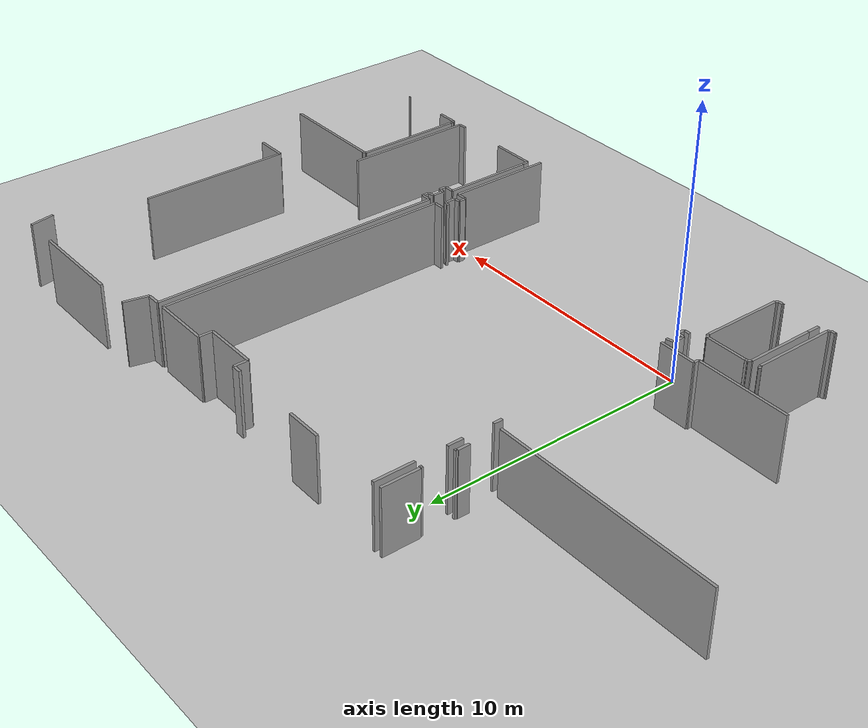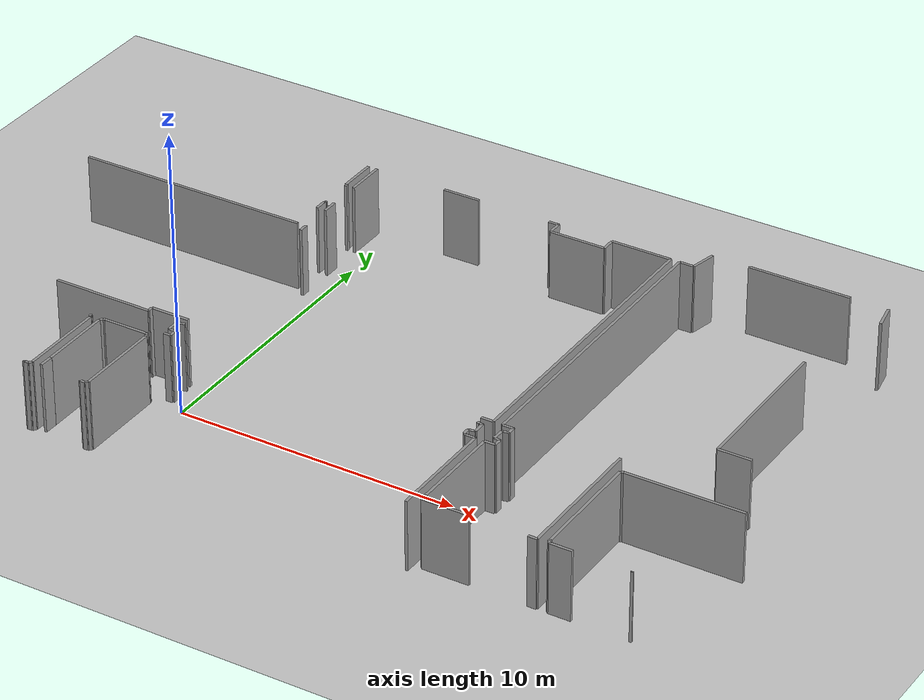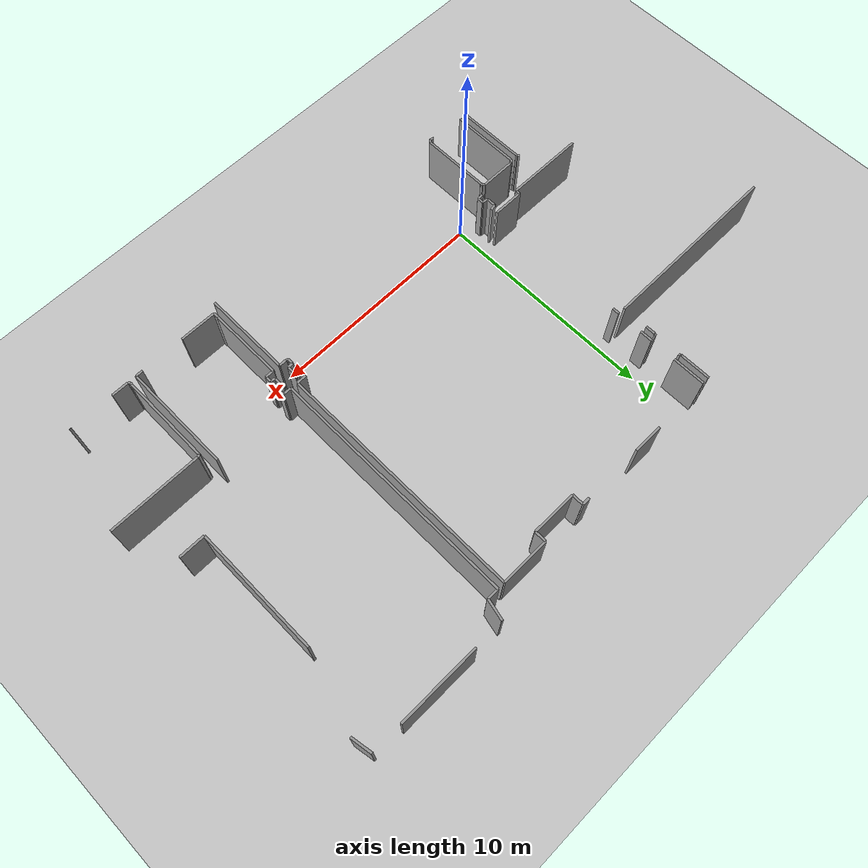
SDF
<sdf version="1.6">
 <world name="default">
  <model name="ground_plane">
   <static>1</static>
   <link name="link">
    <collision name="collision">
     <geometry><plane><normal>0 0 1</normal><size>100 100</size></plane></geometry>
     <surface><friction><ode><mu>100</mu><mu2>50</mu2></ode></friction></surface>
    </collision>
    <visual name="visual">
     <cast_shadows>0</cast_shadows>
     <geometry><plane><normal>0 0 1</normal><size>100 100</size></plane></geometry>
     <material>
      <script><uri>file://media/materials/scripts/gazebo.material</uri><name>Gazebo/Grey</name></script>
     </material>
    </visual>
   </link>
  </model>
  <model name="0510032261_A_40_1_103">
   <static>1</static>
   <link name="Wall_240">
    <collision name="Wall_240_Collision">
     <geometry><box><size>1.38526048285 0.1 2.5</size></box></geometry>
     <pose>0.692630241423 0 1.25 0 0 0</pose>
    </collision>
    <visual name="Wall_240_Visual">
     <pose>0.692630241423 0 1.25 0 0 0</pose>
     <geometry><box><size>1.38526048285 0.1 2.5</size></box></geometry>
     <material>
      <script><uri>file://media/materials/scripts/gazebo.material</uri><name>Gazebo/Grey</name></script>
      <ambient>1 1 1 1</ambient>
     </material>
    </visual>
    <pose>48.2067344346 -4.00635324015 0 0 0 -1.57079632679</pose>
   </link>
   <link name="Wall_241">
    <collision name="Wall_241_Collision">
     <geometry><box><size>0.0350698856417 0.1 2.5</size></box></geometry>
     <pose>0.0175349428208 0 1.25 0 0 0</pose>
    </collision>
    <visual name="Wall_241_Visual">
     <pose>0.0175349428208 0 1.25 0 0 0</pose>
     <geometry><box><size>0.0350698856417 0.1 2.5</size></box></geometry>
     <material>
      <script><uri>file://media/materials/scripts/gazebo.material</uri><name>Gazebo/Grey</name></script>
      <ambient>1 1 1 1</ambient>
     </material>
    </visual>
    <pose>48.2067344346 -5.391613723 0 0 0 0.0</pose>
   </link>
   <link name="Wall_242">
    <collision name="Wall_242_Collision">
     <geometry><box><size>0.0955527318933 0.1 2.5</size></box></geometry>
     <pose>0.0477763659466 0 1.25 0 0 0</pose>
    </collision>
    <visual name="Wall_242_Visual">
     <pose>0.0477763659466 0 1.25 0 0 0</pose>
     <geometry><box><size>0.0955527318933 0.1 2.5</size></box></geometry>
     <material>
      <script><uri>file://media/materials/scripts/gazebo.material</uri><name>Gazebo/Grey</name></script>
      <ambient>1 1 1 1</ambient>
     </material>
    </visual>
    <pose>48.2418043202 -5.391613723 0 0 0 -1.57079632679</pose>
   </link>
   <link name="Wall_243">
    <collision name="Wall_243_Collision">
     <geometry><box><size>0.0726810673443 0.1 2.5</size></box></geometry>
     <pose>0.0363405336722 0 1.25 0 0 0</pose>
    </collision>
    <visual name="Wall_243_Visual">
     <pose>0.0363405336722 0 1.25 0 0 0</pose>
     <geometry><box><size>0.0726810673443 0.1 2.5</size></box></geometry>
     <material>
      <script><uri>file://media/materials/scripts/gazebo.material</uri><name>Gazebo/Grey</name></script>
      <ambient>1 1 1 1</ambient>
     </material>
    </visual>
    <pose>48.2418043202 -6.64675984752 0 0 0 -1.57079632679</pose>
   </link>
   <link name="Wall_244">
    <collision name="Wall_244_Collision">
     <geometry><box><size>0.0274459974587 0.1 2.5</size></box></geometry>
     <pose>0.0137229987293 0 1.25 0 0 0</pose>
    </collision>
    <visual name="Wall_244_Visual">
     <pose>0.0137229987293 0 1.25 0 0 0</pose>
     <geometry><box><size>0.0274459974587 0.1 2.5</size></box></geometry>
     <material>
      <script><uri>file://media/materials/scripts/gazebo.material</uri><name>Gazebo/Grey</name></script>
      <ambient>1 1 1 1</ambient>
     </material>
    </visual>
    <pose>48.2418043202 -6.71944091487 0 0 0 3.14159265359</pose>
   </link>
   <link name="Wall_245">
    <collision name="Wall_245_Collision">
     <geometry><box><size>0.449936467598 0.1 2.5</size></box></geometry>
     <pose>0.224968233799 0 1.25 0 0 0</pose>
    </collision>
    <visual name="Wall_245_Visual">
     <pose>0.224968233799 0 1.25 0 0 0</pose>
     <geometry><box><size>0.449936467598 0.1 2.5</size></box></geometry>
     <material>
      <script><uri>file://media/materials/scripts/gazebo.material</uri><name>Gazebo/Grey</name></script>
      <ambient>1 1 1 1</ambient>
     </material>
    </visual>
    <pose>48.2143583227 -6.71944091487 0 0 0 -1.57079632679</pose>
   </link>
   <link name="Wall_246">
    <collision name="Wall_246_Collision">
     <geometry><box><size>8.36709564312 0.1 2.5</size></box></geometry>
     <pose>4.18354782156 0 1.25 0 0 0</pose>
    </collision>
    <visual name="Wall_246_Visual">
     <pose>4.18354782156 0 1.25 0 0 0</pose>
     <geometry><box><size>8.36709564312 0.1 2.5</size></box></geometry>
     <material>
      <script><uri>file://media/materials/scripts/gazebo.material</uri><name>Gazebo/Grey</name></script>
      <ambient>1 1 1 1</ambient>
     </material>
    </visual>
    <pose>48.2143583227 -8.32312579416 0 0 0 3.14045368462</pose>
   </link>
   <link name="Wall_324">
    <collision name="Wall_324_Collision">
     <geometry><box><size>0.0911317767555 0.1 2.5</size></box></geometry>
     <pose>0.0455658883778 0 1.25 0 0 0</pose>
    </collision>
    <visual name="Wall_324_Visual">
     <pose>0.0455658883778 0 1.25 0 0 0</pose>
     <geometry><box><size>0.0911317767555 0.1 2.5</size></box></geometry>
     <material>
      <script><uri>file://media/materials/scripts/gazebo.material</uri><name>Gazebo/Grey</name></script>
      <ambient>1 1 1 1</ambient>
     </material>
    </visual>
    <pose>45.7200762389 -16.4304955527 0 0 0 -0.761733942618</pose>
   </link>
   <link name="Wall_325">
    <collision name="Wall_325_Collision">
     <geometry><box><size>0.0677733214685 0.1 2.5</size></box></geometry>
     <pose>0.0338866607342 0 1.25 0 0 0</pose>
    </collision>
    <visual name="Wall_325_Visual">
     <pose>0.0338866607342 0 1.25 0 0 0</pose>
     <geometry><box><size>0.0677733214685 0.1 2.5</size></box></geometry>
     <material>
      <script><uri>file://media/materials/scripts/gazebo.material</uri><name>Gazebo/Grey</name></script>
      <ambient>1 1 1 1</ambient>
     </material>
    </visual>
    <pose>45.7860228717 -16.4933926302 0 0 0 -1.33809535503</pose>
   </link>
   <link name="Wall_326">
    <collision name="Wall_326_Collision">
     <geometry><box><size>3.06429479034 0.1 2.5</size></box></geometry>
     <pose>1.53214739517 0 1.25 0 0 0</pose>
    </collision>
    <visual name="Wall_326_Visual">
     <pose>1.53214739517 0 1.25 0 0 0</pose>
     <geometry><box><size>3.06429479034 0.1 2.5</size></box></geometry>
     <material>
      <script><uri>file://media/materials/scripts/gazebo.material</uri><name>Gazebo/Grey</name></script>
      <ambient>1 1 1 1</ambient>
     </material>
    </visual>
    <pose>45.8016518424 -16.559339263 0 0 0 -1.57079632679</pose>
   </link>
   <link name="Wall_327">
    <collision name="Wall_327_Collision">
     <geometry><box><size>0.115516442725 0.1 2.5</size></box></geometry>
     <pose>0.0577582213623 0 1.25 0 0 0</pose>
    </collision>
    <visual name="Wall_327_Visual">
     <pose>0.0577582213623 0 1.25 0 0 0</pose>
     <geometry><box><size>0.115516442725 0.1 2.5</size></box></geometry>
     <material>
      <script><uri>file://media/materials/scripts/gazebo.material</uri><name>Gazebo/Grey</name></script>
      <ambient>1 1 1 1</ambient>
     </material>
    </visual>
    <pose>45.8016518424 -19.6236340534 0 0 0 -2.29159238349</pose>
   </link>
   <link name="Wall_328">
    <collision name="Wall_328_Collision">
     <geometry><box><size>0.158958068615 0.1 2.5</size></box></geometry>
     <pose>0.0794790343075 0 1.25 0 0 0</pose>
    </collision>
    <visual name="Wall_328_Visual">
     <pose>0.0794790343075 0 1.25 0 0 0</pose>
     <geometry><box><size>0.158958068615 0.1 2.5</size></box></geometry>
     <material>
      <script><uri>file://media/materials/scripts/gazebo.material</uri><name>Gazebo/Grey</name></script>
      <ambient>1 1 1 1</ambient>
     </material>
    </visual>
    <pose>45.7254129606 -19.7104193139 0 0 0 3.14159265359</pose>
   </link>
   <link name="Wall_329">
    <collision name="Wall_329_Collision">
     <geometry><box><size>0.0360864040661 0.1 2.5</size></box></geometry>
     <pose>0.018043202033 0 1.25 0 0 0</pose>
    </collision>
    <visual name="Wall_329_Visual">
     <pose>0.018043202033 0 1.25 0 0 0</pose>
     <geometry><box><size>0.0360864040661 0.1 2.5</size></box></geometry>
     <material>
      <script><uri>file://media/materials/scripts/gazebo.material</uri><name>Gazebo/Grey</name></script>
      <ambient>1 1 1 1</ambient>
     </material>
    </visual>
    <pose>45.566454892 -19.7104193139 0 0 0 -1.57079632679</pose>
   </link>
   <link name="Wall_336">
    <collision name="Wall_336_Collision">
     <geometry><box><size>2.58233799238 0.1 2.5</size></box></geometry>
     <pose>1.29116899619 0 1.25 0 0 0</pose>
    </collision>
    <visual name="Wall_336_Visual">
     <pose>1.29116899619 0 1.25 0 0 0</pose>
     <geometry><box><size>2.58233799238 0.1 2.5</size></box></geometry>
     <material>
      <script><uri>file://media/materials/scripts/gazebo.material</uri><name>Gazebo/Grey</name></script>
      <ambient>1 1 1 1</ambient>
     </material>
    </visual>
    <pose>46.1445997459 -19.1240152478 0 0 0 1.57079632679</pose>
   </link>
   <link name="Wall_337">
    <collision name="Wall_337_Collision">
     <geometry><box><size>0.128939787591 0.1 2.5</size></box></geometry>
     <pose>0.0644698937953 0 1.25 0 0 0</pose>
    </collision>
    <visual name="Wall_337_Visual">
     <pose>0.0644698937953 0 1.25 0 0 0</pose>
     <geometry><box><size>0.128939787591 0.1 2.5</size></box></geometry>
     <material>
      <script><uri>file://media/materials/scripts/gazebo.material</uri><name>Gazebo/Grey</name></script>
      <ambient>1 1 1 1</ambient>
     </material>
    </visual>
    <pose>46.1445997459 -16.5416772554 0 0 0 0.909753157944</pose>
   </link>
   <link name="Wall_338">
    <collision name="Wall_338_Collision">
     <geometry><box><size>0.0744700566917 0.1 2.5</size></box></geometry>
     <pose>0.0372350283459 0 1.25 0 0 0</pose>
    </collision>
    <visual name="Wall_338_Visual">
     <pose>0.0372350283459 0 1.25 0 0 0</pose>
     <geometry><box><size>0.0744700566917 0.1 2.5</size></box></geometry>
     <material>
      <script><uri>file://media/materials/scripts/gazebo.material</uri><name>Gazebo/Grey</name></script>
      <ambient>1 1 1 1</ambient>
     </material>
    </visual>
    <pose>46.2237611182 -16.4398983482 0 0 0 0.102554892354</pose>
   </link>
   <link name="Wall_339">
    <collision name="Wall_339_Collision">
     <geometry><box><size>1.55768742058 0.1 2.5</size></box></geometry>
     <pose>0.778843710292 0 1.25 0 0 0</pose>
    </collision>
    <visual name="Wall_339_Visual">
     <pose>0.778843710292 0 1.25 0 0 0</pose>
     <geometry><box><size>1.55768742058 0.1 2.5</size></box></geometry>
     <material>
      <script><uri>file://media/materials/scripts/gazebo.material</uri><name>Gazebo/Grey</name></script>
      <ambient>1 1 1 1</ambient>
     </material>
    </visual>
    <pose>46.2978398983 -16.43227446 0 0 0 0.0</pose>
   </link>
   <link name="Wall_340">
    <collision name="Wall_340_Collision">
     <geometry><box><size>0.10008722819 0.1 2.5</size></box></geometry>
     <pose>0.050043614095 0 1.25 0 0 0</pose>
    </collision>
    <visual name="Wall_340_Visual">
     <pose>0.050043614095 0 1.25 0 0 0</pose>
     <geometry><box><size>0.10008722819 0.1 2.5</size></box></geometry>
     <material>
      <script><uri>file://media/materials/scripts/gazebo.material</uri><name>Gazebo/Grey</name></script>
      <ambient>1 1 1 1</ambient>
     </material>
    </visual>
    <pose>47.8555273189 -16.43227446 0 0 0 -0.726115192602</pose>
   </link>
   <link name="Wall_341">
    <collision name="Wall_341_Collision">
     <geometry><box><size>0.0856425256067 0.1 2.5</size></box></geometry>
     <pose>0.0428212628034 0 1.25 0 0 0</pose>
    </collision>
    <visual name="Wall_341_Visual">
     <pose>0.0428212628034 0 1.25 0 0 0</pose>
     <geometry><box><size>0.0856425256067 0.1 2.5</size></box></geometry>
     <material>
      <script><uri>file://media/materials/scripts/gazebo.material</uri><name>Gazebo/Grey</name></script>
      <ambient>1 1 1 1</ambient>
     </material>
    </visual>
    <pose>47.9303684879 -16.498729352 0 0 0 -1.32653734688</pose>
   </link>
   <link name="Wall_342">
    <collision name="Wall_342_Collision">
     <geometry><box><size>3.05997458704 0.1 2.5</size></box></geometry>
     <pose>1.52998729352 0 1.25 0 0 0</pose>
    </collision>
    <visual name="Wall_342_Visual">
     <pose>1.52998729352 0 1.25 0 0 0</pose>
     <geometry><box><size>3.05997458704 0.1 2.5</size></box></geometry>
     <material>
      <script><uri>file://media/materials/scripts/gazebo.material</uri><name>Gazebo/Grey</name></script>
      <ambient>1 1 1 1</ambient>
     </material>
    </visual>
    <pose>47.9510800508 -16.5818297332 0 0 0 -1.57079632679</pose>
   </link>
   <link name="Wall_343">
    <collision name="Wall_343_Collision">
     <geometry><box><size>0.115497991918 0.1 2.5</size></box></geometry>
     <pose>0.0577489959592 0 1.25 0 0 0</pose>
    </collision>
    <visual name="Wall_343_Visual">
     <pose>0.0577489959592 0 1.25 0 0 0</pose>
     <geometry><box><size>0.115497991918 0.1 2.5</size></box></geometry>
     <material>
      <script><uri>file://media/materials/scripts/gazebo.material</uri><name>Gazebo/Grey</name></script>
      <ambient>1 1 1 1</ambient>
     </material>
    </visual>
    <pose>47.9510800508 -19.6418043202 0 0 0 -2.38342511172</pose>
   </link>
   <link name="Wall_344">
    <collision name="Wall_344_Collision">
     <geometry><box><size>0.158831003812 0.1 2.5</size></box></geometry>
     <pose>0.079415501906 0 1.25 0 0 0</pose>
    </collision>
    <visual name="Wall_344_Visual">
     <pose>0.079415501906 0 1.25 0 0 0</pose>
     <geometry><box><size>0.158831003812 0.1 2.5</size></box></geometry>
     <material>
      <script><uri>file://media/materials/scripts/gazebo.material</uri><name>Gazebo/Grey</name></script>
      <ambient>1 1 1 1</ambient>
     </material>
    </visual>
    <pose>47.8672172808 -19.7212198221 0 0 0 3.14159265359</pose>
   </link>
   <link name="Wall_345">
    <collision name="Wall_345_Collision">
     <geometry><box><size>0.0288437102922 0.1 2.5</size></box></geometry>
     <pose>0.0144218551461 0 1.25 0 0 0</pose>
    </collision>
    <visual name="Wall_345_Visual">
     <pose>0.0144218551461 0 1.25 0 0 0</pose>
     <geometry><box><size>0.0288437102922 0.1 2.5</size></box></geometry>
     <material>
      <script><uri>file://media/materials/scripts/gazebo.material</uri><name>Gazebo/Grey</name></script>
      <ambient>1 1 1 1</ambient>
     </material>
    </visual>
    <pose>47.708386277 -19.7212198221 0 0 0 -1.57079632679</pose>
   </link>
   <link name="Wall_351">
    <collision name="Wall_351_Collision">
     <geometry><box><size>0.481633952606 0.1 2.5</size></box></geometry>
     <pose>0.240816976303 0 1.25 0 0 0</pose>
    </collision>
    <visual name="Wall_351_Visual">
     <pose>0.240816976303 0 1.25 0 0 0</pose>
     <geometry><box><size>0.481633952606 0.1 2.5</size></box></geometry>
     <material>
      <script><uri>file://media/materials/scripts/gazebo.material</uri><name>Gazebo/Grey</name></script>
      <ambient>1 1 1 1</ambient>
     </material>
    </visual>
    <pose>46.1371029225 -19.6055908513 0 0 0 1.55523030182</pose>
   </link>
   <link name="Wall_356">
    <collision name="Wall_356_Collision">
     <geometry><box><size>0.247268106734 0.1 2.5</size></box></geometry>
     <pose>0.123634053367 0 1.25 0 0 0</pose>
    </collision>
    <visual name="Wall_356_Visual">
     <pose>0.123634053367 0 1.25 0 0 0</pose>
     <geometry><box><size>0.247268106734 0.1 2.5</size></box></geometry>
     <material>
      <script><uri>file://media/materials/scripts/gazebo.material</uri><name>Gazebo/Grey</name></script>
      <ambient>1 1 1 1</ambient>
     </material>
    </visual>
    <pose>48.3273189327 -16.1332909784 0 0 0 0.0</pose>
   </link>
   <link name="Wall_357">
    <collision name="Wall_357_Collision">
     <geometry><box><size>0.262770012706 0.1 2.5</size></box></geometry>
     <pose>0.131385006353 0 1.25 0 0 0</pose>
    </collision>
    <visual name="Wall_357_Visual">
     <pose>0.131385006353 0 1.25 0 0 0</pose>
     <geometry><box><size>0.262770012706 0.1 2.5</size></box></geometry>
     <material>
      <script><uri>file://media/materials/scripts/gazebo.material</uri><name>Gazebo/Grey</name></script>
      <ambient>1 1 1 1</ambient>
     </material>
    </visual>
    <pose>48.5745870394 -16.1332909784 0 0 0 1.57079632679</pose>
   </link>
   <link name="Wall_358">
    <collision name="Wall_358_Collision">
     <geometry><box><size>0.254863140833 0.1 2.5</size></box></geometry>
     <pose>0.127431570416 0 1.25 0 0 0</pose>
    </collision>
    <visual name="Wall_358_Visual">
     <pose>0.127431570416 0 1.25 0 0 0</pose>
     <geometry><box><size>0.254863140833 0.1 2.5</size></box></geometry>
     <material>
      <script><uri>file://media/materials/scripts/gazebo.material</uri><name>Gazebo/Grey</name></script>
      <ambient>1 1 1 1</ambient>
     </material>
    </visual>
    <pose>48.5745870394 -15.8705209657 0 0 0 3.02867809991</pose>
   </link>
   <link name="Wall_359">
    <collision name="Wall_359_Collision">
     <geometry><box><size>0.420330368488 0.1 2.5</size></box></geometry>
     <pose>0.210165184244 0 1.25 0 0 0</pose>
    </collision>
    <visual name="Wall_359_Visual">
     <pose>0.210165184244 0 1.25 0 0 0</pose>
     <geometry><box><size>0.420330368488 0.1 2.5</size></box></geometry>
     <material>
      <script><uri>file://media/materials/scripts/gazebo.material</uri><name>Gazebo/Grey</name></script>
      <ambient>1 1 1 1</ambient>
     </material>
    </visual>
    <pose>48.3213468869 -15.8418043202 0 0 0 1.57079632679</pose>
   </link>
   <link name="Wall_360">
    <collision name="Wall_360_Collision">
     <geometry><box><size>0.274688713568 0.1 2.5</size></box></geometry>
     <pose>0.137344356784 0 1.25 0 0 0</pose>
    </collision>
    <visual name="Wall_360_Visual">
     <pose>0.137344356784 0 1.25 0 0 0</pose>
     <geometry><box><size>0.274688713568 0.1 2.5</size></box></geometry>
     <material>
      <script><uri>file://media/materials/scripts/gazebo.material</uri><name>Gazebo/Grey</name></script>
      <ambient>1 1 1 1</ambient>
     </material>
    </visual>
    <pose>48.3213468869 -15.4214739517 0 0 0 0.227700310954</pose>
   </link>
   <link name="Wall_361">
    <collision name="Wall_361_Collision">
     <geometry><box><size>0.101608154526 0.1 2.5</size></box></geometry>
     <pose>0.0508040772628 0 1.25 0 0 0</pose>
    </collision>
    <visual name="Wall_361_Visual">
     <pose>0.0508040772628 0 1.25 0 0 0</pose>
     <geometry><box><size>0.101608154526 0.1 2.5</size></box></geometry>
     <material>
      <script><uri>file://media/materials/scripts/gazebo.material</uri><name>Gazebo/Grey</name></script>
      <ambient>1 1 1 1</ambient>
     </material>
    </visual>
    <pose>59.3121982211 -15.3594663278 0 0 0 -0.404891786285</pose>
   </link>
   <link name="Wall_362">
    <collision name="Wall_362_Collision">
     <geometry><box><size>0.109783989835 0.1 2.5</size></box></geometry>
     <pose>0.0548919949174 0 1.25 0 0 0</pose>
    </collision>
    <visual name="Wall_362_Visual">
     <pose>0.0548919949174 0 1.25 0 0 0</pose>
     <geometry><box><size>0.109783989835 0.1 2.5</size></box></geometry>
     <material>
      <script><uri>file://media/materials/scripts/gazebo.material</uri><name>Gazebo/Grey</name></script>
      <ambient>1 1 1 1</ambient>
     </material>
    </visual>
    <pose>59.4055908513 -15.3994917408 0 0 0 0.0</pose>
   </link>
   <link name="Wall_363">
    <collision name="Wall_363_Collision">
     <geometry><box><size>0.428462515883 0.1 2.5</size></box></geometry>
     <pose>0.214231257942 0 1.25 0 0 0</pose>
    </collision>
    <visual name="Wall_363_Visual">
     <pose>0.214231257942 0 1.25 0 0 0</pose>
     <geometry><box><size>0.428462515883 0.1 2.5</size></box></geometry>
     <material>
      <script><uri>file://media/materials/scripts/gazebo.material</uri><name>Gazebo/Grey</name></script>
      <ambient>1 1 1 1</ambient>
     </material>
    </visual>
    <pose>59.5153748412 -15.3994917408 0 0 0 -1.57079632679</pose>
   </link>
   <link name="Wall_364">
    <collision name="Wall_364_Collision">
     <geometry><box><size>0.232976876743 0.1 2.5</size></box></geometry>
     <pose>0.116488438371 0 1.25 0 0 0</pose>
    </collision>
    <visual name="Wall_364_Visual">
     <pose>0.116488438371 0 1.25 0 0 0</pose>
     <geometry><box><size>0.232976876743 0.1 2.5</size></box></geometry>
     <material>
      <script><uri>file://media/materials/scripts/gazebo.material</uri><name>Gazebo/Grey</name></script>
      <ambient>1 1 1 1</ambient>
     </material>
    </visual>
    <pose>59.5153748412 -15.8279542567 0 0 0 -2.99930994532</pose>
   </link>
   <link name="Wall_365">
    <collision name="Wall_365_Collision">
     <geometry><box><size>0.2416772554 0.1 2.5</size></box></geometry>
     <pose>0.1208386277 0 1.25 0 0 0</pose>
    </collision>
    <visual name="Wall_365_Visual">
     <pose>0.1208386277 0 1.25 0 0 0</pose>
     <geometry><box><size>0.2416772554 0.1 2.5</size></box></geometry>
     <material>
      <script><uri>file://media/materials/scripts/gazebo.material</uri><name>Gazebo/Grey</name></script>
      <ambient>1 1 1 1</ambient>
     </material>
    </visual>
    <pose>59.2847522236 -15.8609911055 0 0 0 -1.57079632679</pose>
   </link>
   <link name="Wall_366">
    <collision name="Wall_366_Collision">
     <geometry><box><size>0.0859764063255 0.1 2.5</size></box></geometry>
     <pose>0.0429882031628 0 1.25 0 0 0</pose>
    </collision>
    <visual name="Wall_366_Visual">
     <pose>0.0429882031628 0 1.25 0 0 0</pose>
     <geometry><box><size>0.0859764063255 0.1 2.5</size></box></geometry>
     <material>
      <script><uri>file://media/materials/scripts/gazebo.material</uri><name>Gazebo/Grey</name></script>
      <ambient>1 1 1 1</ambient>
     </material>
    </visual>
    <pose>59.2847522236 -16.1026683609 0 0 0 -0.464308547437</pose>
   </link>
   <link name="Wall_367">
    <collision name="Wall_367_Collision">
     <geometry><box><size>0.340533672173 0.1 2.5</size></box></geometry>
     <pose>0.170266836086 0 1.25 0 0 0</pose>
    </collision>
    <visual name="Wall_367_Visual">
     <pose>0.170266836086 0 1.25 0 0 0</pose>
     <geometry><box><size>0.340533672173 0.1 2.5</size></box></geometry>
     <material>
      <script><uri>file://media/materials/scripts/gazebo.material</uri><name>Gazebo/Grey</name></script>
      <ambient>1 1 1 1</ambient>
     </material>
    </visual>
    <pose>59.3616264295 -16.1411689962 0 0 0 0.0</pose>
   </link>
   <link name="Wall_368">
    <collision name="Wall_368_Collision">
     <geometry><box><size>3.9415501906 0.1 2.5</size></box></geometry>
     <pose>1.9707750953 0 1.25 0 0 0</pose>
    </collision>
    <visual name="Wall_368_Visual">
     <pose>1.9707750953 0 1.25 0 0 0</pose>
     <geometry><box><size>3.9415501906 0.1 2.5</size></box></geometry>
     <material>
      <script><uri>file://media/materials/scripts/gazebo.material</uri><name>Gazebo/Grey</name></script>
      <ambient>1 1 1 1</ambient>
     </material>
    </visual>
    <pose>59.7021601017 -16.1411689962 0 0 0 -1.57079632679</pose>
   </link>
   <link name="Wall_386">
    <collision name="Wall_386_Collision">
     <geometry><box><size>0.320457433291 0.1 2.5</size></box></geometry>
     <pose>0.160228716645 0 1.25 0 0 0</pose>
    </collision>
    <visual name="Wall_386_Visual">
     <pose>0.160228716645 0 1.25 0 0 0</pose>
     <geometry><box><size>0.320457433291 0.1 2.5</size></box></geometry>
     <material>
      <script><uri>file://media/materials/scripts/gazebo.material</uri><name>Gazebo/Grey</name></script>
      <ambient>1 1 1 1</ambient>
     </material>
    </visual>
    <pose>48.534180432 -8.64459974587 0 0 0 1.57079632679</pose>
   </link>
   <link name="Wall_387">
    <collision name="Wall_387_Collision">
     <geometry><box><size>0.563659466328 0.1 2.5</size></box></geometry>
     <pose>0.281829733164 0 1.25 0 0 0</pose>
    </collision>
    <visual name="Wall_387_Visual">
     <pose>0.281829733164 0 1.25 0 0 0</pose>
     <geometry><box><size>0.563659466328 0.1 2.5</size></box></geometry>
     <material>
      <script><uri>file://media/materials/scripts/gazebo.material</uri><name>Gazebo/Grey</name></script>
      <ambient>1 1 1 1</ambient>
     </material>
    </visual>
    <pose>48.534180432 -7.18144853875 0 0 0 1.57079632679</pose>
   </link>
   <link name="Wall_388">
    <collision name="Wall_388_Collision">
     <geometry><box><size>1.46645489199 0.1 2.5</size></box></geometry>
     <pose>0.733227445997 0 1.25 0 0 0</pose>
    </collision>
    <visual name="Wall_388_Visual">
     <pose>0.733227445997 0 1.25 0 0 0</pose>
     <geometry><box><size>1.46645489199 0.1 2.5</size></box></geometry>
     <material>
      <script><uri>file://media/materials/scripts/gazebo.material</uri><name>Gazebo/Grey</name></script>
      <ambient>1 1 1 1</ambient>
     </material>
    </visual>
    <pose>48.534180432 -5.46111817027 0 0 0 1.57079632679</pose>
   </link>
   <link name="Wall_389">
    <collision name="Wall_389_Collision">
     <geometry><box><size>1.34358322745 0.1 2.5</size></box></geometry>
     <pose>0.671791613723 0 1.25 0 0 0</pose>
    </collision>
    <visual name="Wall_389_Visual">
     <pose>0.671791613723 0 1.25 0 0 0</pose>
     <geometry><box><size>1.34358322745 0.1 2.5</size></box></geometry>
     <material>
      <script><uri>file://media/materials/scripts/gazebo.material</uri><name>Gazebo/Grey</name></script>
      <ambient>1 1 1 1</ambient>
     </material>
    </visual>
    <pose>51.1650571792 -3.99466327827 0 0 0 0.0</pose>
   </link>
   <link name="Wall_390">
    <collision name="Wall_390_Collision">
     <geometry><box><size>0.354891994917 0.1 2.5</size></box></geometry>
     <pose>0.177445997459 0 1.25 0 0 0</pose>
    </collision>
    <visual name="Wall_390_Visual">
     <pose>0.177445997459 0 1.25 0 0 0</pose>
     <geometry><box><size>0.354891994917 0.1 2.5</size></box></geometry>
     <material>
      <script><uri>file://media/materials/scripts/gazebo.material</uri><name>Gazebo/Grey</name></script>
      <ambient>1 1 1 1</ambient>
     </material>
    </visual>
    <pose>55.1803049555 -3.99466327827 0 0 0 0.0</pose>
   </link>
   <link name="Wall_391">
    <collision name="Wall_391_Collision">
     <geometry><box><size>0.516391359593 0.1 2.5</size></box></geometry>
     <pose>0.258195679797 0 1.25 0 0 0</pose>
    </collision>
    <visual name="Wall_391_Visual">
     <pose>0.258195679797 0 1.25 0 0 0</pose>
     <geometry><box><size>0.516391359593 0.1 2.5</size></box></geometry>
     <material>
      <script><uri>file://media/materials/scripts/gazebo.material</uri><name>Gazebo/Grey</name></script>
      <ambient>1 1 1 1</ambient>
     </material>
    </visual>
    <pose>55.5351969504 -3.99466327827 0 0 0 -1.57079632679</pose>
   </link>
   <link name="Wall_392">
    <collision name="Wall_392_Collision">
     <geometry><box><size>2.01359593393 0.1 2.5</size></box></geometry>
     <pose>1.00679796696 0 1.25 0 0 0</pose>
    </collision>
    <visual name="Wall_392_Visual">
     <pose>1.00679796696 0 1.25 0 0 0</pose>
     <geometry><box><size>2.01359593393 0.1 2.5</size></box></geometry>
     <material>
      <script><uri>file://media/materials/scripts/gazebo.material</uri><name>Gazebo/Grey</name></script>
      <ambient>1 1 1 1</ambient>
     </material>
    </visual>
    <pose>55.5351969504 -4.51105463787 0 0 0 0.0</pose>
   </link>
   <link name="Wall_393">
    <collision name="Wall_393_Collision">
     <geometry><box><size>0.504701397713 0.1 2.5</size></box></geometry>
     <pose>0.252350698856 0 1.25 0 0 0</pose>
    </collision>
    <visual name="Wall_393_Visual">
     <pose>0.252350698856 0 1.25 0 0 0</pose>
     <geometry><box><size>0.504701397713 0.1 2.5</size></box></geometry>
     <material>
      <script><uri>file://media/materials/scripts/gazebo.material</uri><name>Gazebo/Grey</name></script>
      <ambient>1 1 1 1</ambient>
     </material>
    </visual>
    <pose>57.5487928844 -4.51105463787 0 0 0 1.57079632679</pose>
   </link>
   <link name="Wall_394">
    <collision name="Wall_394_Collision">
     <geometry><box><size>2.16442185515 0.1 2.5</size></box></geometry>
     <pose>1.08221092757 0 1.25 0 0 0</pose>
    </collision>
    <visual name="Wall_394_Visual">
     <pose>1.08221092757 0 1.25 0 0 0</pose>
     <geometry><box><size>2.16442185515 0.1 2.5</size></box></geometry>
     <material>
      <script><uri>file://media/materials/scripts/gazebo.material</uri><name>Gazebo/Grey</name></script>
      <ambient>1 1 1 1</ambient>
     </material>
    </visual>
    <pose>57.5487928844 -4.00635324015 0 0 0 0.0</pose>
   </link>
   <link name="Wall_395">
    <collision name="Wall_395_Collision">
     <geometry><box><size>11.0855146125 0.1 2.5</size></box></geometry>
     <pose>5.54275730623 0 1.25 0 0 0</pose>
    </collision>
    <visual name="Wall_395_Visual">
     <pose>5.54275730623 0 1.25 0 0 0</pose>
     <geometry><box><size>11.0855146125 0.1 2.5</size></box></geometry>
     <material>
      <script><uri>file://media/materials/scripts/gazebo.material</uri><name>Gazebo/Grey</name></script>
      <ambient>1 1 1 1</ambient>
     </material>
    </visual>
    <pose>59.7132147395 -4.00635324015 0 0 0 -1.57079632679</pose>
   </link>
   <link name="Wall_396">
    <collision name="Wall_396_Collision">
     <geometry><box><size>0.434053367217 0.1 2.5</size></box></geometry>
     <pose>0.217026683609 0 1.25 0 0 0</pose>
    </collision>
    <visual name="Wall_396_Visual">
     <pose>0.217026683609 0 1.25 0 0 0</pose>
     <geometry><box><size>0.434053367217 0.1 2.5</size></box></geometry>
     <material>
      <script><uri>file://media/materials/scripts/gazebo.material</uri><name>Gazebo/Grey</name></script>
      <ambient>1 1 1 1</ambient>
     </material>
    </visual>
    <pose>59.7132147395 -15.0918678526 0 0 0 3.14159265359</pose>
   </link>
   <link name="Wall_397">
    <collision name="Wall_397_Collision">
     <geometry><box><size>1.37789072427 0.1 2.5</size></box></geometry>
     <pose>0.688945362135 0 1.25 0 0 0</pose>
    </collision>
    <visual name="Wall_397_Visual">
     <pose>0.688945362135 0 1.25 0 0 0</pose>
     <geometry><box><size>1.37789072427 0.1 2.5</size></box></geometry>
     <material>
      <script><uri>file://media/materials/scripts/gazebo.material</uri><name>Gazebo/Grey</name></script>
      <ambient>1 1 1 1</ambient>
     </material>
    </visual>
    <pose>48.5289707751 -15.0918678526 0 0 0 3.14159265359</pose>
   </link>
   <link name="Wall_398">
    <collision name="Wall_398_Collision">
     <geometry><box><size>0.200635324015 0.1 2.5</size></box></geometry>
     <pose>0.100317662008 0 1.25 0 0 0</pose>
    </collision>
    <visual name="Wall_398_Visual">
     <pose>0.100317662008 0 1.25 0 0 0</pose>
     <geometry><box><size>0.200635324015 0.1 2.5</size></box></geometry>
     <material>
      <script><uri>file://media/materials/scripts/gazebo.material</uri><name>Gazebo/Grey</name></script>
      <ambient>1 1 1 1</ambient>
     </material>
    </visual>
    <pose>47.1510800508 -15.0918678526 0 0 0 -1.57079632679</pose>
   </link>
   <link name="Wall_399">
    <collision name="Wall_399_Collision">
     <geometry><box><size>3.54528630349 0.1 2.5</size></box></geometry>
     <pose>1.77264315174 0 1.25 0 0 0</pose>
    </collision>
    <visual name="Wall_399_Visual">
     <pose>1.77264315174 0 1.25 0 0 0</pose>
     <geometry><box><size>3.54528630349 0.1 2.5</size></box></geometry>
     <material>
      <script><uri>file://media/materials/scripts/gazebo.material</uri><name>Gazebo/Grey</name></script>
      <ambient>1 1 1 1</ambient>
     </material>
    </visual>
    <pose>47.1510800508 -15.2925031766 0 0 0 3.13621655399</pose>
   </link>
   <link name="Wall_400">
    <collision name="Wall_400_Collision">
     <geometry><box><size>3.34663278272 0.1 2.5</size></box></geometry>
     <pose>1.67331639136 0 1.25 0 0 0</pose>
    </collision>
    <visual name="Wall_400_Visual">
     <pose>1.67331639136 0 1.25 0 0 0</pose>
     <geometry><box><size>3.34663278272 0.1 2.5</size></box></geometry>
     <material>
      <script><uri>file://media/materials/scripts/gazebo.material</uri><name>Gazebo/Grey</name></script>
      <ambient>1 1 1 1</ambient>
     </material>
    </visual>
    <pose>60.0320203304 -19.4886912325 0 0 0 1.57079632679</pose>
   </link>
   <link name="Wall_401">
    <collision name="Wall_401_Collision">
     <geometry><box><size>0.37293519695 0.1 2.5</size></box></geometry>
     <pose>0.186467598475 0 1.25 0 0 0</pose>
    </collision>
    <visual name="Wall_401_Visual">
     <pose>0.186467598475 0 1.25 0 0 0</pose>
     <geometry><box><size>0.37293519695 0.1 2.5</size></box></geometry>
     <material>
      <script><uri>file://media/materials/scripts/gazebo.material</uri><name>Gazebo/Grey</name></script>
      <ambient>1 1 1 1</ambient>
     </material>
    </visual>
    <pose>60.0320203304 -16.1420584498 0 0 0 0.0</pose>
   </link>
   <link name="Wall_402">
    <collision name="Wall_402_Collision">
     <geometry><box><size>0.26874205845 0.1 2.5</size></box></geometry>
     <pose>0.134371029225 0 1.25 0 0 0</pose>
    </collision>
    <visual name="Wall_402_Visual">
     <pose>0.134371029225 0 1.25 0 0 0</pose>
     <geometry><box><size>0.26874205845 0.1 2.5</size></box></geometry>
     <material>
      <script><uri>file://media/materials/scripts/gazebo.material</uri><name>Gazebo/Grey</name></script>
      <ambient>1 1 1 1</ambient>
     </material>
    </visual>
    <pose>60.4049555273 -16.1420584498 0 0 0 1.57079632679</pose>
   </link>
   <link name="Wall_403">
    <collision name="Wall_403_Collision">
     <geometry><box><size>0.212673421152 0.1 2.5</size></box></geometry>
     <pose>0.106336710576 0 1.25 0 0 0</pose>
    </collision>
    <visual name="Wall_403_Visual">
     <pose>0.106336710576 0 1.25 0 0 0</pose>
     <geometry><box><size>0.212673421152 0.1 2.5</size></box></geometry>
     <material>
      <script><uri>file://media/materials/scripts/gazebo.material</uri><name>Gazebo/Grey</name></script>
      <ambient>1 1 1 1</ambient>
     </material>
    </visual>
    <pose>60.4049555273 -15.8733163914 0 0 0 3.00434279832</pose>
   </link>
   <link name="Wall_404">
    <collision name="Wall_404_Collision">
     <geometry><box><size>0.428650773108 0.1 2.5</size></box></geometry>
     <pose>0.214325386554 0 1.25 0 0 0</pose>
    </collision>
    <visual name="Wall_404_Visual">
     <pose>0.214325386554 0 1.25 0 0 0</pose>
     <geometry><box><size>0.428650773108 0.1 2.5</size></box></geometry>
     <material>
      <script><uri>file://media/materials/scripts/gazebo.material</uri><name>Gazebo/Grey</name></script>
      <ambient>1 1 1 1</ambient>
     </material>
    </visual>
    <pose>60.1942820839 -15.8442185515 0 0 0 1.55389903209</pose>
   </link>
   <link name="Wall_405">
    <collision name="Wall_405_Collision">
     <geometry><box><size>0.230948065845 0.1 2.5</size></box></geometry>
     <pose>0.115474032922 0 1.25 0 0 0</pose>
    </collision>
    <visual name="Wall_405_Visual">
     <pose>0.115474032922 0 1.25 0 0 0</pose>
     <geometry><box><size>0.230948065845 0.1 2.5</size></box></geometry>
     <material>
      <script><uri>file://media/materials/scripts/gazebo.material</uri><name>Gazebo/Grey</name></script>
      <ambient>1 1 1 1</ambient>
     </material>
    </visual>
    <pose>60.2015247776 -15.4156289708 0 0 0 0.221891468585</pose>
   </link>
   <link name="Wall_406">
    <collision name="Wall_406_Collision">
     <geometry><box><size>0.261730208313 0.1 2.5</size></box></geometry>
     <pose>0.130865104156 0 1.25 0 0 0</pose>
    </collision>
    <visual name="Wall_406_Visual">
     <pose>0.130865104156 0 1.25 0 0 0</pose>
     <geometry><box><size>0.261730208313 0.1 2.5</size></box></geometry>
     <material>
      <script><uri>file://media/materials/scripts/gazebo.material</uri><name>Gazebo/Grey</name></script>
      <ambient>1 1 1 1</ambient>
     </material>
    </visual>
    <pose>60.4268106734 -15.3648030496 0 0 0 1.59895789378</pose>
   </link>
   <link name="Wall_407">
    <collision name="Wall_407_Collision">
     <geometry><box><size>0.377763659466 0.1 2.5</size></box></geometry>
     <pose>0.188881829733 0 1.25 0 0 0</pose>
    </collision>
    <visual name="Wall_407_Visual">
     <pose>0.188881829733 0 1.25 0 0 0</pose>
     <geometry><box><size>0.377763659466 0.1 2.5</size></box></geometry>
     <material>
      <script><uri>file://media/materials/scripts/gazebo.material</uri><name>Gazebo/Grey</name></script>
      <ambient>1 1 1 1</ambient>
     </material>
    </visual>
    <pose>60.4194409149 -15.1031766201 0 0 0 3.14159265359</pose>
   </link>
   <link name="Wall_408">
    <collision name="Wall_408_Collision">
     <geometry><box><size>11.0977128335 0.1 2.5</size></box></geometry>
     <pose>5.54885641677 0 1.25 0 0 0</pose>
    </collision>
    <visual name="Wall_408_Visual">
     <pose>5.54885641677 0 1.25 0 0 0</pose>
     <geometry><box><size>11.0977128335 0.1 2.5</size></box></geometry>
     <material>
      <script><uri>file://media/materials/scripts/gazebo.material</uri><name>Gazebo/Grey</name></script>
      <ambient>1 1 1 1</ambient>
     </material>
    </visual>
    <pose>60.0416772554 -15.1031766201 0 0 0 1.57079632679</pose>
   </link>
   <link name="Wall_409">
    <collision name="Wall_409_Collision">
     <geometry><box><size>0.518043202033 0.1 2.5</size></box></geometry>
     <pose>0.259021601017 0 1.25 0 0 0</pose>
    </collision>
    <visual name="Wall_409_Visual">
     <pose>0.259021601017 0 1.25 0 0 0</pose>
     <geometry><box><size>0.518043202033 0.1 2.5</size></box></geometry>
     <material>
      <script><uri>file://media/materials/scripts/gazebo.material</uri><name>Gazebo/Grey</name></script>
      <ambient>1 1 1 1</ambient>
     </material>
    </visual>
    <pose>60.0416772554 -4.00546378653 0 0 0 0.0</pose>
   </link>
   <link name="Wall_410">
    <collision name="Wall_410_Collision">
     <geometry><box><size>0.915095146515 0.1 2.5</size></box></geometry>
     <pose>0.457547573258 0 1.25 0 0 0</pose>
    </collision>
    <visual name="Wall_410_Visual">
     <pose>0.457547573258 0 1.25 0 0 0</pose>
     <geometry><box><size>0.915095146515 0.1 2.5</size></box></geometry>
     <material>
      <script><uri>file://media/materials/scripts/gazebo.material</uri><name>Gazebo/Grey</name></script>
      <ambient>1 1 1 1</ambient>
     </material>
    </visual>
    <pose>60.5597204574 -4.00546378653 0 0 0 1.35515461688</pose>
   </link>
   <link name="Wall_411">
    <collision name="Wall_411_Collision">
     <geometry><box><size>3.63595933926 0.1 2.5</size></box></geometry>
     <pose>1.81797966963 0 1.25 0 0 0</pose>
    </collision>
    <visual name="Wall_411_Visual">
     <pose>1.81797966963 0 1.25 0 0 0</pose>
     <geometry><box><size>3.63595933926 0.1 2.5</size></box></geometry>
     <material>
      <script><uri>file://media/materials/scripts/gazebo.material</uri><name>Gazebo/Grey</name></script>
      <ambient>1 1 1 1</ambient>
     </material>
    </visual>
    <pose>62.0834815756 -3.11156289708 0 0 0 0.0</pose>
   </link>
   <link name="Wall_412">
    <collision name="Wall_412_Collision">
     <geometry><box><size>0.916101894364 0.1 2.5</size></box></geometry>
     <pose>0.458050947182 0 1.25 0 0 0</pose>
    </collision>
    <visual name="Wall_412_Visual">
     <pose>0.458050947182 0 1.25 0 0 0</pose>
     <geometry><box><size>0.916101894364 0.1 2.5</size></box></geometry>
     <material>
      <script><uri>file://media/materials/scripts/gazebo.material</uri><name>Gazebo/Grey</name></script>
      <ambient>1 1 1 1</ambient>
     </material>
    </visual>
    <pose>67.0631512071 -3.11156289708 0 0 0 -1.38906954275</pose>
   </link>
   <link name="Wall_421">
    <collision name="Wall_421_Collision">
     <geometry><box><size>5.66010165184 0.1 2.5</size></box></geometry>
     <pose>2.83005082592 0 1.25 0 0 0</pose>
    </collision>
    <visual name="Wall_421_Visual">
     <pose>2.83005082592 0 1.25 0 0 0</pose>
     <geometry><box><size>5.66010165184 0.1 2.5</size></box></geometry>
     <material>
      <script><uri>file://media/materials/scripts/gazebo.material</uri><name>Gazebo/Grey</name></script>
      <ambient>1 1 1 1</ambient>
     </material>
    </visual>
    <pose>66.2153748412 -7.2292249047 0 0 0 -1.57079632679</pose>
   </link>
   <link name="Wall_422">
    <collision name="Wall_422_Collision">
     <geometry><box><size>1.16188055909 0.1 2.5</size></box></geometry>
     <pose>0.580940279543 0 1.25 0 0 0</pose>
    </collision>
    <visual name="Wall_422_Visual">
     <pose>0.580940279543 0 1.25 0 0 0</pose>
     <geometry><box><size>1.16188055909 0.1 2.5</size></box></geometry>
     <material>
      <script><uri>file://media/materials/scripts/gazebo.material</uri><name>Gazebo/Grey</name></script>
      <ambient>1 1 1 1</ambient>
     </material>
    </visual>
    <pose>66.2153748412 -12.8893265565 0 0 0 0.0</pose>
   </link>
   <link name="Wall_425">
    <collision name="Wall_425_Collision">
     <geometry><box><size>4.89898348158 0.1 2.5</size></box></geometry>
     <pose>2.44949174079 0 1.25 0 0 0</pose>
    </collision>
    <visual name="Wall_425_Visual">
     <pose>2.44949174079 0 1.25 0 0 0</pose>
     <geometry><box><size>4.89898348158 0.1 2.5</size></box></geometry>
     <material>
      <script><uri>file://media/materials/scripts/gazebo.material</uri><name>Gazebo/Grey</name></script>
      <ambient>1 1 1 1</ambient>
     </material>
    </visual>
    <pose>63.9759847522 -14.8282083863 0 0 0 -1.57079632679</pose>
   </link>
   <link name="Wall_426">
    <collision name="Wall_426_Collision">
     <geometry><box><size>0.318805590851 0.1 2.5</size></box></geometry>
     <pose>0.159402795426 0 1.25 0 0 0</pose>
    </collision>
    <visual name="Wall_426_Visual">
     <pose>0.159402795426 0 1.25 0 0 0</pose>
     <geometry><box><size>0.318805590851 0.1 2.5</size></box></geometry>
     <material>
      <script><uri>file://media/materials/scripts/gazebo.material</uri><name>Gazebo/Grey</name></script>
      <ambient>1 1 1 1</ambient>
     </material>
    </visual>
    <pose>63.9759847522 -19.7271918679 0 0 0 3.14159265359</pose>
   </link>
   <link name="Wall_427">
    <collision name="Wall_427_Collision">
     <geometry><box><size>1.6458703939 0.1 2.5</size></box></geometry>
     <pose>0.82293519695 0 1.25 0 0 0</pose>
    </collision>
    <visual name="Wall_427_Visual">
     <pose>0.82293519695 0 1.25 0 0 0</pose>
     <geometry><box><size>1.6458703939 0.1 2.5</size></box></geometry>
     <material>
      <script><uri>file://media/materials/scripts/gazebo.material</uri><name>Gazebo/Grey</name></script>
      <ambient>1 1 1 1</ambient>
     </material>
    </visual>
    <pose>61.6785260483 -19.7271918679 0 0 0 3.14159265359</pose>
   </link>
   <link name="Wall_428">
    <collision name="Wall_428_Collision">
     <geometry><box><size>0.238501481519 0.1 2.5</size></box></geometry>
     <pose>0.119250740759 0 1.25 0 0 0</pose>
    </collision>
    <visual name="Wall_428_Visual">
     <pose>0.119250740759 0 1.25 0 0 0</pose>
     <geometry><box><size>0.238501481519 0.1 2.5</size></box></geometry>
     <material>
      <script><uri>file://media/materials/scripts/gazebo.material</uri><name>Gazebo/Grey</name></script>
      <ambient>1 1 1 1</ambient>
     </material>
    </visual>
    <pose>60.0326556544 -19.7271918679 0 0 0 1.57346014575</pose>
   </link>
   <link name="Wall_429">
    <collision name="Wall_429_Collision">
     <geometry><box><size>4.09466327827 0.1 2.5</size></box></geometry>
     <pose>2.04733163914 0 1.25 0 0 0</pose>
    </collision>
    <visual name="Wall_429_Visual">
     <pose>2.04733163914 0 1.25 0 0 0</pose>
     <geometry><box><size>4.09466327827 0.1 2.5</size></box></geometry>
     <material>
      <script><uri>file://media/materials/scripts/gazebo.material</uri><name>Gazebo/Grey</name></script>
      <ambient>1 1 1 1</ambient>
     </material>
    </visual>
    <pose>64.3185514612 -19.5592121982 0 0 0 1.57079632679</pose>
   </link>
   <link name="Wall_430">
    <collision name="Wall_430_Collision">
     <geometry><box><size>0.116728577705 0.1 2.5</size></box></geometry>
     <pose>0.0583642888526 0 1.25 0 0 0</pose>
    </collision>
    <visual name="Wall_430_Visual">
     <pose>0.0583642888526 0 1.25 0 0 0</pose>
     <geometry><box><size>0.116728577705 0.1 2.5</size></box></geometry>
     <material>
      <script><uri>file://media/materials/scripts/gazebo.material</uri><name>Gazebo/Grey</name></script>
      <ambient>1 1 1 1</ambient>
     </material>
    </visual>
    <pose>64.3185514612 -15.4645489199 0 0 0 0.326914019695</pose>
   </link>
   <link name="Wall_431">
    <collision name="Wall_431_Collision">
     <geometry><box><size>4.10787801779 0.1 2.5</size></box></geometry>
     <pose>2.05393900889 0 1.25 0 0 0</pose>
    </collision>
    <visual name="Wall_431_Visual">
     <pose>2.05393900889 0 1.25 0 0 0</pose>
     <geometry><box><size>4.10787801779 0.1 2.5</size></box></geometry>
     <material>
      <script><uri>file://media/materials/scripts/gazebo.material</uri><name>Gazebo/Grey</name></script>
      <ambient>1 1 1 1</ambient>
     </material>
    </visual>
    <pose>64.4290978399 -15.427064803 0 0 0 0.0</pose>
   </link>
   <link name="Wall_442">
    <collision name="Wall_442_Collision">
     <geometry><box><size>0.0345616264295 0.1 2.5</size></box></geometry>
     <pose>0.0172808132147 0 1.25 0 0 0</pose>
    </collision>
    <visual name="Wall_442_Visual">
     <pose>0.0172808132147 0 1.25 0 0 0</pose>
     <geometry><box><size>0.0345616264295 0.1 2.5</size></box></geometry>
     <material>
      <script><uri>file://media/materials/scripts/gazebo.material</uri><name>Gazebo/Grey</name></script>
      <ambient>1 1 1 1</ambient>
     </material>
    </visual>
    <pose>67.1280813215 -19.7158831004 0 0 0 -1.57079632679</pose>
   </link>
   <link name="Wall_446">
    <collision name="Wall_446_Collision">
     <geometry><box><size>0.766454891995 0.1 2.5</size></box></geometry>
     <pose>0.383227445997 0 1.25 0 0 0</pose>
    </collision>
    <visual name="Wall_446_Visual">
     <pose>0.383227445997 0 1.25 0 0 0</pose>
     <geometry><box><size>0.766454891995 0.1 2.5</size></box></geometry>
     <material>
      <script><uri>file://media/materials/scripts/gazebo.material</uri><name>Gazebo/Grey</name></script>
      <ambient>1 1 1 1</ambient>
     </material>
    </visual>
    <pose>65.1430749682 -19.7221092757 0 0 0 3.14159265359</pose>
   </link>
   <link name="Wall_447">
    <collision name="Wall_447_Collision">
     <geometry><box><size>0.0932767305463 0.1 2.5</size></box></geometry>
     <pose>0.0466383652732 0 1.25 0 0 0</pose>
    </collision>
    <visual name="Wall_447_Visual">
     <pose>0.0466383652732 0 1.25 0 0 0</pose>
     <geometry><box><size>0.0932767305463 0.1 2.5</size></box></geometry>
     <material>
      <script><uri>file://media/materials/scripts/gazebo.material</uri><name>Gazebo/Grey</name></script>
      <ambient>1 1 1 1</ambient>
     </material>
    </visual>
    <pose>64.3766200762 -19.7221092757 0 0 0 2.30897792222</pose>
   </link>
   <link name="Wall_448">
    <collision name="Wall_448_Collision">
     <geometry><box><size>0.0940185097767 0.1 2.5</size></box></geometry>
     <pose>0.0470092548884 0 1.25 0 0 0</pose>
    </collision>
    <visual name="Wall_448_Visual">
     <pose>0.0470092548884 0 1.25 0 0 0</pose>
     <geometry><box><size>0.0940185097767 0.1 2.5</size></box></geometry>
     <material>
      <script><uri>file://media/materials/scripts/gazebo.material</uri><name>Gazebo/Grey</name></script>
      <ambient>1 1 1 1</ambient>
     </material>
    </visual>
    <pose>64.3138500635 -19.6531130877 0 0 0 1.52077044103</pose>
   </link>
   <pose>-49.15 16.5314485388 0 0 0 0</pose>
  </model>
 </world>
</sdf>
